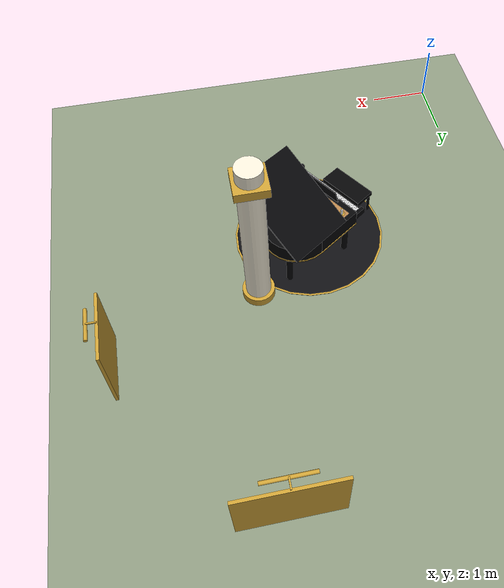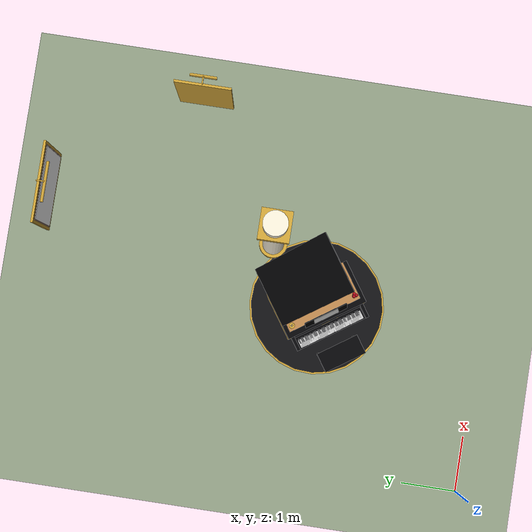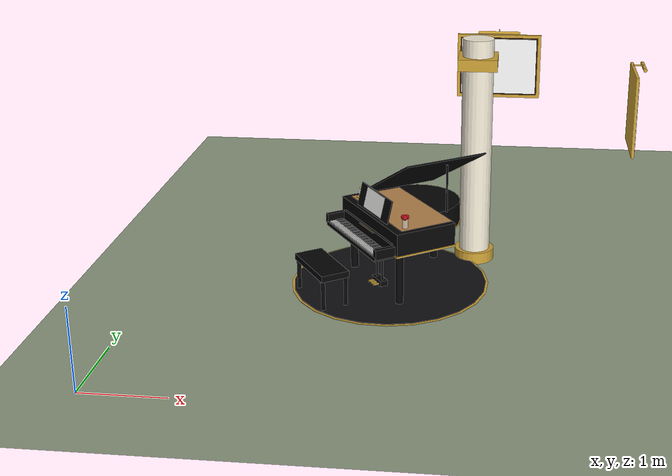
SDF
<sdf version="1.9">
 <world name="dar_tunibot">
  <model name="ground_plane">
   <static>true</static>
   <link name="link">
    <collision name="collision">
     <geometry><plane><normal>0 0 1</normal><size>60 60</size></plane></geometry>
    </collision>
    <visual name="visual">
     <geometry><plane><normal>0 0 1</normal><size>60 60</size></plane></geometry>
     <material><ambient>0.55 0.6 0.5 1</ambient><diffuse>0.55 0.6 0.5 1</diffuse></material>
    </visual>
   </link>
  </model>
  <model name="column_5">
   <static>true</static>
   <pose>4 4 0 0 0 0</pose>
   <link name="link">
    <visual name="base_v">
     <pose>0.000 0.000 0.075 0.0000 0.0000 0.0000</pose>
     <geometry><cylinder><radius>0.260</radius><length>0.150</length></cylinder></geometry>
     <material>
      <ambient>0.8 0.63 0.21 1</ambient>
      <diffuse>0.8 0.63 0.21 1</diffuse>
      <specular>0.1 0.1 0.1 1</specular>
     </material>
    </visual>
    <collision name="base_c">
     <pose>0.000 0.000 0.075 0.0000 0.0000 0.0000</pose>
     <geometry><cylinder><radius>0.260</radius><length>0.150</length></cylinder></geometry>
    </collision>
    <visual name="shaft_v">
     <pose>0.000 0.000 1.500 0.0000 0.0000 0.0000</pose>
     <geometry><cylinder><radius>0.200</radius><length>3.000</length></cylinder></geometry>
     <material>
      <ambient>0.95 0.92 0.84 1</ambient>
      <diffuse>0.95 0.92 0.84 1</diffuse>
      <specular>0.1 0.1 0.1 1</specular>
     </material>
    </visual>
    <collision name="shaft_c">
     <pose>0.000 0.000 1.500 0.0000 0.0000 0.0000</pose>
     <geometry><cylinder><radius>0.200</radius><length>3.000</length></cylinder></geometry>
    </collision>
    <visual name="capital_v">
     <pose>0.000 0.000 2.700 0.0000 0.0000 0.0000</pose>
     <geometry><box><size>0.500 0.500 0.150</size></box></geometry>
     <material>
      <ambient>0.8 0.63 0.21 1</ambient>
      <diffuse>0.8 0.63 0.21 1</diffuse>
      <specular>0.1 0.1 0.1 1</specular>
     </material>
    </visual>
   </link>
  </model>
  <model name="art_north_east">
   <static>true</static>
   <pose>4.2 7.9 0 0 0 -1.5707963267948966</pose>
   <link name="link">
    <visual name="frame_v">
     <pose>0.030 0.000 1.700 0.0000 0.0000 0.0000</pose>
     <geometry><box><size>0.040 1.340 1.040</size></box></geometry>
     <material>
      <ambient>0.8 0.63 0.21 1</ambient>
      <diffuse>0.8 0.63 0.21 1</diffuse>
      <specular>0.1 0.1 0.1 1</specular>
     </material>
    </visual>
    <visual name="liner_v">
     <pose>0.052 0.000 1.700 0.0000 0.0000 0.0000</pose>
     <geometry><box><size>0.010 1.240 0.940</size></box></geometry>
     <material>
      <ambient>0.2 0.12 0.07 1</ambient>
      <diffuse>0.2 0.12 0.07 1</diffuse>
      <specular>0.1 0.1 0.1 1</specular>
     </material>
    </visual>
    <visual name="canvas_v">
     <pose>0.057 0.000 1.700 0.0000 0.0000 0.0000</pose>
     <geometry><box><size>0.010 1.200 0.900</size></box></geometry>
     <material>
      <ambient>1 1 1 1</ambient>
      <diffuse>1 1 1 1</diffuse>
      <specular>0.05 0.05 0.05 1</specular>
      <pbr>
       <metal>
        <albedo_map>model://dar_art/materials/textures/desert_dunes_night.png</albedo_map>
        <roughness>0.9</roughness>
        <metalness>0.0</metalness>
       </metal>
      </pbr>
     </material>
    </visual>
    <visual name="lamp_arm_v">
     <pose>0.080 0.000 2.290 0.0000 0.0000 0.0000</pose>
     <geometry><box><size>0.140 0.020 0.020</size></box></geometry>
     <material>
      <ambient>0.8 0.63 0.21 1</ambient>
      <diffuse>0.8 0.63 0.21 1</diffuse>
      <specular>0.1 0.1 0.1 1</specular>
     </material>
    </visual>
    <visual name="lamp_v">
     <pose>0.150 0.000 2.270 1.5708 0.0000 0.0000</pose>
     <geometry><cylinder><radius>0.025</radius><length>0.660</length></cylinder></geometry>
     <material>
      <ambient>0.8 0.63 0.21 1</ambient>
      <diffuse>0.8 0.63 0.21 1</diffuse>
      <specular>0.1 0.1 0.1 1</specular>
     </material>
    </visual>
    <visual name="lamp_glow_v">
     <pose>0.150 0.000 2.245 0.0000 0.0000 0.0000</pose>
     <geometry><box><size>0.020 0.600 0.010</size></box></geometry>
     <material>
      <ambient>1.0 0.85 0.6 1</ambient>
      <diffuse>1.0 0.85 0.6 1</diffuse>
      <specular>0.1 0.1 0.1 1</specular>
      <emissive>1.0 0.8 0.5 1</emissive>
     </material>
    </visual>
   </link>
  </model>
  <model name="art_salon_west">
   <static>true</static>
   <pose>6.1 5.5 0 0 0 0.0</pose>
   <link name="link">
    <visual name="frame_v">
     <pose>0.030 0.000 1.700 0.0000 0.0000 0.0000</pose>
     <geometry><box><size>0.040 0.940 1.140</size></box></geometry>
     <material>
      <ambient>0.8 0.63 0.21 1</ambient>
      <diffuse>0.8 0.63 0.21 1</diffuse>
      <specular>0.1 0.1 0.1 1</specular>
     </material>
    </visual>
    <visual name="liner_v">
     <pose>0.052 0.000 1.700 0.0000 0.0000 0.0000</pose>
     <geometry><box><size>0.010 0.840 1.040</size></box></geometry>
     <material>
      <ambient>0.2 0.12 0.07 1</ambient>
      <diffuse>0.2 0.12 0.07 1</diffuse>
      <specular>0.1 0.1 0.1 1</specular>
     </material>
    </visual>
    <visual name="canvas_v">
     <pose>0.057 0.000 1.700 0.0000 0.0000 0.0000</pose>
     <geometry><box><size>0.010 0.800 1.000</size></box></geometry>
     <material>
      <ambient>1 1 1 1</ambient>
      <diffuse>1 1 1 1</diffuse>
      <specular>0.05 0.05 0.05 1</specular>
      <pbr>
       <metal>
        <albedo_map>model://dar_art/materials/textures/gold_burgundy_rings.png</albedo_map>
        <roughness>0.9</roughness>
        <metalness>0.0</metalness>
       </metal>
      </pbr>
     </material>
    </visual>
    <visual name="lamp_arm_v">
     <pose>0.080 0.000 2.340 0.0000 0.0000 0.0000</pose>
     <geometry><box><size>0.140 0.020 0.020</size></box></geometry>
     <material>
      <ambient>0.8 0.63 0.21 1</ambient>
      <diffuse>0.8 0.63 0.21 1</diffuse>
      <specular>0.1 0.1 0.1 1</specular>
     </material>
    </visual>
    <visual name="lamp_v">
     <pose>0.150 0.000 2.320 1.5708 0.0000 0.0000</pose>
     <geometry><cylinder><radius>0.025</radius><length>0.440</length></cylinder></geometry>
     <material>
      <ambient>0.8 0.63 0.21 1</ambient>
      <diffuse>0.8 0.63 0.21 1</diffuse>
      <specular>0.1 0.1 0.1 1</specular>
     </material>
    </visual>
    <visual name="lamp_glow_v">
     <pose>0.150 0.000 2.295 0.0000 0.0000 0.0000</pose>
     <geometry><box><size>0.020 0.400 0.010</size></box></geometry>
     <material>
      <ambient>1.0 0.85 0.6 1</ambient>
      <diffuse>1.0 0.85 0.6 1</diffuse>
      <specular>0.1 0.1 0.1 1</specular>
      <emissive>1.0 0.8 0.5 1</emissive>
     </material>
    </visual>
   </link>
  </model>
  <model name="grand_piano">
   <static>true</static>
   <pose>3.18 3.17 0 0 0 0.6</pose>
   <link name="link">
    <collision name="solid_c">
     <pose>0.000 0.000 0.500 0.0000 0.0000 0.0000</pose>
     <geometry><box><size>1.600 1.500 1.000</size></box></geometry>
    </collision>
    <collision name="bench_solid_c">
     <pose>-1.200 0.000 0.250 0.0000 0.0000 0.0000</pose>
     <geometry><box><size>0.360 0.800 0.500</size></box></geometry>
    </collision>
    <visual name="platform_edge_v">
     <pose>-0.250 0.000 0.034 0.0000 0.0000 0.0000</pose>
     <geometry><cylinder><radius>1.250</radius><length>0.006</length></cylinder></geometry>
     <material>
      <ambient>0.8 0.63 0.21 1</ambient>
      <diffuse>0.8 0.63 0.21 1</diffuse>
      <specular>0.1 0.1 0.1 1</specular>
     </material>
    </visual>
    <visual name="platform_v">
     <pose>-0.250 0.000 0.040 0.0000 0.0000 0.0000</pose>
     <geometry><cylinder><radius>1.220</radius><length>0.010</length></cylinder></geometry>
     <material>
      <ambient>0.06 0.06 0.07 1</ambient>
      <diffuse>0.06 0.06 0.07 1</diffuse>
      <specular>0.1 0.1 0.1 1</specular>
     </material>
    </visual>
    <visual name="case_v">
     <pose>-0.150 0.000 0.850 0.0000 0.0000 0.0000</pose>
     <geometry><box><size>0.800 1.500 0.300</size></box></geometry>
     <material>
      <ambient>0.015 0.015 0.02 1</ambient>
      <diffuse>0.015 0.015 0.02 1</diffuse>
      <specular>0.7 0.7 0.7 1</specular>
     </material>
    </visual>
    <visual name="tail_v">
     <pose>0.250 0.200 0.850 0.0000 0.0000 0.0000</pose>
     <geometry><cylinder><radius>0.550</radius><length>0.300</length></cylinder></geometry>
     <material>
      <ambient>0.015 0.015 0.02 1</ambient>
      <diffuse>0.015 0.015 0.02 1</diffuse>
      <specular>0.7 0.7 0.7 1</specular>
     </material>
    </visual>
    <visual name="rim_trim_v">
     <pose>-0.150 0.000 0.710 0.0000 0.0000 0.0000</pose>
     <geometry><box><size>0.820 1.520 0.020</size></box></geometry>
     <material>
      <ambient>0.8 0.63 0.21 1</ambient>
      <diffuse>0.8 0.63 0.21 1</diffuse>
      <specular>0.1 0.1 0.1 1</specular>
     </material>
    </visual>
    <visual name="tail_trim_v">
     <pose>0.250 0.200 0.710 0.0000 0.0000 0.0000</pose>
     <geometry><cylinder><radius>0.560</radius><length>0.020</length></cylinder></geometry>
     <material>
      <ambient>0.8 0.63 0.21 1</ambient>
      <diffuse>0.8 0.63 0.21 1</diffuse>
      <specular>0.1 0.1 0.1 1</specular>
     </material>
    </visual>
    <visual name="soundboard_v">
     <pose>-0.100 0.000 1.003 0.0000 0.0000 0.0000</pose>
     <geometry><box><size>0.700 1.360 0.005</size></box></geometry>
     <material>
      <ambient>0.72 0.52 0.3 1</ambient>
      <diffuse>0.72 0.52 0.3 1</diffuse>
      <specular>0.1 0.1 0.1 1</specular>
     </material>
    </visual>
    <visual name="lid_v">
     <pose>0.250 0.100 1.375 -0.5236 0.0000 0.0000</pose>
     <geometry><box><size>1.100 1.500 0.020</size></box></geometry>
     <material>
      <ambient>0.015 0.015 0.02 1</ambient>
      <diffuse>0.015 0.015 0.02 1</diffuse>
      <specular>0.7 0.7 0.7 1</specular>
     </material>
    </visual>
    <visual name="prop_v">
     <pose>0.350 -0.376 1.310 0.0000 0.0000 0.0000</pose>
     <geometry><cylinder><radius>0.012</radius><length>0.620</length></cylinder></geometry>
     <material>
      <ambient>0.015 0.015 0.02 1</ambient>
      <diffuse>0.015 0.015 0.02 1</diffuse>
      <specular>0.7 0.7 0.7 1</specular>
     </material>
    </visual>
    <visual name="keybed_v">
     <pose>-0.680 0.000 0.705 0.0000 0.0000 0.0000</pose>
     <geometry><box><size>0.260 1.340 0.050</size></box></geometry>
     <material>
      <ambient>0.015 0.015 0.02 1</ambient>
      <diffuse>0.015 0.015 0.02 1</diffuse>
      <specular>0.7 0.7 0.7 1</specular>
     </material>
    </visual>
    <visual name="cheek_l_v">
     <pose>-0.680 0.670 0.770 0.0000 0.0000 0.0000</pose>
     <geometry><box><size>0.260 0.060 0.120</size></box></geometry>
     <material>
      <ambient>0.015 0.015 0.02 1</ambient>
      <diffuse>0.015 0.015 0.02 1</diffuse>
      <specular>0.7 0.7 0.7 1</specular>
     </material>
    </visual>
    <visual name="cheek_r_v">
     <pose>-0.680 -0.670 0.770 0.0000 0.0000 0.0000</pose>
     <geometry><box><size>0.260 0.060 0.120</size></box></geometry>
     <material>
      <ambient>0.015 0.015 0.02 1</ambient>
      <diffuse>0.015 0.015 0.02 1</diffuse>
      <specular>0.7 0.7 0.7 1</specular>
     </material>
    </visual>
    <visual name="fallboard_v">
     <pose>-0.560 0.000 0.790 0.0000 0.0000 0.0000</pose>
     <geometry><box><size>0.040 1.280 0.120</size></box></geometry>
     <material>
      <ambient>0.015 0.015 0.02 1</ambient>
      <diffuse>0.015 0.015 0.02 1</diffuse>
      <specular>0.7 0.7 0.7 1</specular>
     </material>
    </visual>
    <visual name="nameboard_trim_v">
     <pose>-0.560 0.000 0.830 0.0000 0.0000 0.0000</pose>
     <geometry><box><size>0.045 0.400 0.010</size></box></geometry>
     <material>
      <ambient>0.8 0.63 0.21 1</ambient>
      <diffuse>0.8 0.63 0.21 1</diffuse>
      <specular>0.1 0.1 0.1 1</specular>
     </material>
    </visual>
    <visual name="wkey0_v">
     <pose>-0.720 0.598 0.740 0.0000 0.0000 0.0000</pose>
     <geometry><box><size>0.150 0.021 0.020</size></box></geometry>
     <material>
      <ambient>0.98 0.98 0.97 1</ambient>
      <diffuse>0.98 0.98 0.97 1</diffuse>
      <specular>0.1 0.1 0.1 1</specular>
     </material>
    </visual>
    <visual name="bkey0_v">
     <pose>-0.670 0.587 0.755 0.0000 0.0000 0.0000</pose>
     <geometry><box><size>0.090 0.013 0.020</size></box></geometry>
     <material>
      <ambient>0.015 0.015 0.02 1</ambient>
      <diffuse>0.015 0.015 0.02 1</diffuse>
      <specular>0.7 0.7 0.7 1</specular>
     </material>
    </visual>
    <visual name="wkey1_v">
     <pose>-0.720 0.575 0.740 0.0000 0.0000 0.0000</pose>
     <geometry><box><size>0.150 0.021 0.020</size></box></geometry>
     <material>
      <ambient>0.98 0.98 0.97 1</ambient>
      <diffuse>0.98 0.98 0.97 1</diffuse>
      <specular>0.1 0.1 0.1 1</specular>
     </material>
    </visual>
    <visual name="wkey2_v">
     <pose>-0.720 0.551 0.740 0.0000 0.0000 0.0000</pose>
     <geometry><box><size>0.150 0.021 0.020</size></box></geometry>
     <material>
      <ambient>0.98 0.98 0.97 1</ambient>
      <diffuse>0.98 0.98 0.97 1</diffuse>
      <specular>0.1 0.1 0.1 1</specular>
     </material>
    </visual>
    <visual name="bkey2_v">
     <pose>-0.670 0.540 0.755 0.0000 0.0000 0.0000</pose>
     <geometry><box><size>0.090 0.013 0.020</size></box></geometry>
     <material>
      <ambient>0.015 0.015 0.02 1</ambient>
      <diffuse>0.015 0.015 0.02 1</diffuse>
      <specular>0.7 0.7 0.7 1</specular>
     </material>
    </visual>
    <visual name="wkey3_v">
     <pose>-0.720 0.528 0.740 0.0000 0.0000 0.0000</pose>
     <geometry><box><size>0.150 0.021 0.020</size></box></geometry>
     <material>
      <ambient>0.98 0.98 0.97 1</ambient>
      <diffuse>0.98 0.98 0.97 1</diffuse>
      <specular>0.1 0.1 0.1 1</specular>
     </material>
    </visual>
    <visual name="bkey3_v">
     <pose>-0.670 0.516 0.755 0.0000 0.0000 0.0000</pose>
     <geometry><box><size>0.090 0.013 0.020</size></box></geometry>
     <material>
      <ambient>0.015 0.015 0.02 1</ambient>
      <diffuse>0.015 0.015 0.02 1</diffuse>
      <specular>0.7 0.7 0.7 1</specular>
     </material>
    </visual>
    <visual name="wkey4_v">
     <pose>-0.720 0.504 0.740 0.0000 0.0000 0.0000</pose>
     <geometry><box><size>0.150 0.021 0.020</size></box></geometry>
     <material>
      <ambient>0.98 0.98 0.97 1</ambient>
      <diffuse>0.98 0.98 0.97 1</diffuse>
      <specular>0.1 0.1 0.1 1</specular>
     </material>
    </visual>
    <visual name="wkey5_v">
     <pose>-0.720 0.481 0.740 0.0000 0.0000 0.0000</pose>
     <geometry><box><size>0.150 0.021 0.020</size></box></geometry>
     <material>
      <ambient>0.98 0.98 0.97 1</ambient>
      <diffuse>0.98 0.98 0.97 1</diffuse>
      <specular>0.1 0.1 0.1 1</specular>
     </material>
    </visual>
    <visual name="bkey5_v">
     <pose>-0.670 0.469 0.755 0.0000 0.0000 0.0000</pose>
     <geometry><box><size>0.090 0.013 0.020</size></box></geometry>
     <material>
      <ambient>0.015 0.015 0.02 1</ambient>
      <diffuse>0.015 0.015 0.02 1</diffuse>
      <specular>0.7 0.7 0.7 1</specular>
     </material>
    </visual>
    <visual name="wkey6_v">
     <pose>-0.720 0.458 0.740 0.0000 0.0000 0.0000</pose>
     <geometry><box><size>0.150 0.021 0.020</size></box></geometry>
     <material>
      <ambient>0.98 0.98 0.97 1</ambient>
      <diffuse>0.98 0.98 0.97 1</diffuse>
      <specular>0.1 0.1 0.1 1</specular>
     </material>
    </visual>
    <visual name="bkey6_v">
     <pose>-0.670 0.446 0.755 0.0000 0.0000 0.0000</pose>
     <geometry><box><size>0.090 0.013 0.020</size></box></geometry>
     <material>
      <ambient>0.015 0.015 0.02 1</ambient>
      <diffuse>0.015 0.015 0.02 1</diffuse>
      <specular>0.7 0.7 0.7 1</specular>
     </material>
    </visual>
    <visual name="wkey7_v">
     <pose>-0.720 0.434 0.740 0.0000 0.0000 0.0000</pose>
     <geometry><box><size>0.150 0.021 0.020</size></box></geometry>
     <material>
      <ambient>0.98 0.98 0.97 1</ambient>
      <diffuse>0.98 0.98 0.97 1</diffuse>
      <specular>0.1 0.1 0.1 1</specular>
     </material>
    </visual>
    <visual name="bkey7_v">
     <pose>-0.670 0.422 0.755 0.0000 0.0000 0.0000</pose>
     <geometry><box><size>0.090 0.013 0.020</size></box></geometry>
     <material>
      <ambient>0.015 0.015 0.02 1</ambient>
      <diffuse>0.015 0.015 0.02 1</diffuse>
      <specular>0.7 0.7 0.7 1</specular>
     </material>
    </visual>
    <visual name="wkey8_v">
     <pose>-0.720 0.411 0.740 0.0000 0.0000 0.0000</pose>
     <geometry><box><size>0.150 0.021 0.020</size></box></geometry>
     <material>
      <ambient>0.98 0.98 0.97 1</ambient>
      <diffuse>0.98 0.98 0.97 1</diffuse>
      <specular>0.1 0.1 0.1 1</specular>
     </material>
    </visual>
    <visual name="wkey9_v">
     <pose>-0.720 0.387 0.740 0.0000 0.0000 0.0000</pose>
     <geometry><box><size>0.150 0.021 0.020</size></box></geometry>
     <material>
      <ambient>0.98 0.98 0.97 1</ambient>
      <diffuse>0.98 0.98 0.97 1</diffuse>
      <specular>0.1 0.1 0.1 1</specular>
     </material>
    </visual>
    <visual name="bkey9_v">
     <pose>-0.670 0.375 0.755 0.0000 0.0000 0.0000</pose>
     <geometry><box><size>0.090 0.013 0.020</size></box></geometry>
     <material>
      <ambient>0.015 0.015 0.02 1</ambient>
      <diffuse>0.015 0.015 0.02 1</diffuse>
      <specular>0.7 0.7 0.7 1</specular>
     </material>
    </visual>
    <visual name="wkey10_v">
     <pose>-0.720 0.364 0.740 0.0000 0.0000 0.0000</pose>
     <geometry><box><size>0.150 0.021 0.020</size></box></geometry>
     <material>
      <ambient>0.98 0.98 0.97 1</ambient>
      <diffuse>0.98 0.98 0.97 1</diffuse>
      <specular>0.1 0.1 0.1 1</specular>
     </material>
    </visual>
    <visual name="bkey10_v">
     <pose>-0.670 0.352 0.755 0.0000 0.0000 0.0000</pose>
     <geometry><box><size>0.090 0.013 0.020</size></box></geometry>
     <material>
      <ambient>0.015 0.015 0.02 1</ambient>
      <diffuse>0.015 0.015 0.02 1</diffuse>
      <specular>0.7 0.7 0.7 1</specular>
     </material>
    </visual>
    <visual name="wkey11_v">
     <pose>-0.720 0.340 0.740 0.0000 0.0000 0.0000</pose>
     <geometry><box><size>0.150 0.021 0.020</size></box></geometry>
     <material>
      <ambient>0.98 0.98 0.97 1</ambient>
      <diffuse>0.98 0.98 0.97 1</diffuse>
      <specular>0.1 0.1 0.1 1</specular>
     </material>
    </visual>
    <visual name="wkey12_v">
     <pose>-0.720 0.317 0.740 0.0000 0.0000 0.0000</pose>
     <geometry><box><size>0.150 0.021 0.020</size></box></geometry>
     <material>
      <ambient>0.98 0.98 0.97 1</ambient>
      <diffuse>0.98 0.98 0.97 1</diffuse>
      <specular>0.1 0.1 0.1 1</specular>
     </material>
    </visual>
    <visual name="bkey12_v">
     <pose>-0.670 0.305 0.755 0.0000 0.0000 0.0000</pose>
     <geometry><box><size>0.090 0.013 0.020</size></box></geometry>
     <material>
      <ambient>0.015 0.015 0.02 1</ambient>
      <diffuse>0.015 0.015 0.02 1</diffuse>
      <specular>0.7 0.7 0.7 1</specular>
     </material>
    </visual>
    <visual name="wkey13_v">
     <pose>-0.720 0.293 0.740 0.0000 0.0000 0.0000</pose>
     <geometry><box><size>0.150 0.021 0.020</size></box></geometry>
     <material>
      <ambient>0.98 0.98 0.97 1</ambient>
      <diffuse>0.98 0.98 0.97 1</diffuse>
      <specular>0.1 0.1 0.1 1</specular>
     </material>
    </visual>
    <visual name="bkey13_v">
     <pose>-0.670 0.282 0.755 0.0000 0.0000 0.0000</pose>
     <geometry><box><size>0.090 0.013 0.020</size></box></geometry>
     <material>
      <ambient>0.015 0.015 0.02 1</ambient>
      <diffuse>0.015 0.015 0.02 1</diffuse>
      <specular>0.7 0.7 0.7 1</specular>
     </material>
    </visual>
    <visual name="wkey14_v">
     <pose>-0.720 0.270 0.740 0.0000 0.0000 0.0000</pose>
     <geometry><box><size>0.150 0.021 0.020</size></box></geometry>
     <material>
      <ambient>0.98 0.98 0.97 1</ambient>
      <diffuse>0.98 0.98 0.97 1</diffuse>
      <specular>0.1 0.1 0.1 1</specular>
     </material>
    </visual>
    <visual name="bkey14_v">
     <pose>-0.670 0.258 0.755 0.0000 0.0000 0.0000</pose>
     <geometry><box><size>0.090 0.013 0.020</size></box></geometry>
     <material>
      <ambient>0.015 0.015 0.02 1</ambient>
      <diffuse>0.015 0.015 0.02 1</diffuse>
      <specular>0.7 0.7 0.7 1</specular>
     </material>
    </visual>
    <visual name="wkey15_v">
     <pose>-0.720 0.246 0.740 0.0000 0.0000 0.0000</pose>
     <geometry><box><size>0.150 0.021 0.020</size></box></geometry>
     <material>
      <ambient>0.98 0.98 0.97 1</ambient>
      <diffuse>0.98 0.98 0.97 1</diffuse>
      <specular>0.1 0.1 0.1 1</specular>
     </material>
    </visual>
    <visual name="wkey16_v">
     <pose>-0.720 0.223 0.740 0.0000 0.0000 0.0000</pose>
     <geometry><box><size>0.150 0.021 0.020</size></box></geometry>
     <material>
      <ambient>0.98 0.98 0.97 1</ambient>
      <diffuse>0.98 0.98 0.97 1</diffuse>
      <specular>0.1 0.1 0.1 1</specular>
     </material>
    </visual>
    <visual name="bkey16_v">
     <pose>-0.670 0.211 0.755 0.0000 0.0000 0.0000</pose>
     <geometry><box><size>0.090 0.013 0.020</size></box></geometry>
     <material>
      <ambient>0.015 0.015 0.02 1</ambient>
      <diffuse>0.015 0.015 0.02 1</diffuse>
      <specular>0.7 0.7 0.7 1</specular>
     </material>
    </visual>
    <visual name="wkey17_v">
     <pose>-0.720 0.199 0.740 0.0000 0.0000 0.0000</pose>
     <geometry><box><size>0.150 0.021 0.020</size></box></geometry>
     <material>
      <ambient>0.98 0.98 0.97 1</ambient>
      <diffuse>0.98 0.98 0.97 1</diffuse>
      <specular>0.1 0.1 0.1 1</specular>
     </material>
    </visual>
    <visual name="bkey17_v">
     <pose>-0.670 0.188 0.755 0.0000 0.0000 0.0000</pose>
     <geometry><box><size>0.090 0.013 0.020</size></box></geometry>
     <material>
      <ambient>0.015 0.015 0.02 1</ambient>
      <diffuse>0.015 0.015 0.02 1</diffuse>
      <specular>0.7 0.7 0.7 1</specular>
     </material>
    </visual>
    <visual name="wkey18_v">
     <pose>-0.720 0.176 0.740 0.0000 0.0000 0.0000</pose>
     <geometry><box><size>0.150 0.021 0.020</size></box></geometry>
     <material>
      <ambient>0.98 0.98 0.97 1</ambient>
      <diffuse>0.98 0.98 0.97 1</diffuse>
      <specular>0.1 0.1 0.1 1</specular>
     </material>
    </visual>
    <visual name="wkey19_v">
     <pose>-0.720 0.153 0.740 0.0000 0.0000 0.0000</pose>
     <geometry><box><size>0.150 0.021 0.020</size></box></geometry>
     <material>
      <ambient>0.98 0.98 0.97 1</ambient>
      <diffuse>0.98 0.98 0.97 1</diffuse>
      <specular>0.1 0.1 0.1 1</specular>
     </material>
    </visual>
    <visual name="bkey19_v">
     <pose>-0.670 0.141 0.755 0.0000 0.0000 0.0000</pose>
     <geometry><box><size>0.090 0.013 0.020</size></box></geometry>
     <material>
      <ambient>0.015 0.015 0.02 1</ambient>
      <diffuse>0.015 0.015 0.02 1</diffuse>
      <specular>0.7 0.7 0.7 1</specular>
     </material>
    </visual>
    <visual name="wkey20_v">
     <pose>-0.720 0.129 0.740 0.0000 0.0000 0.0000</pose>
     <geometry><box><size>0.150 0.021 0.020</size></box></geometry>
     <material>
      <ambient>0.98 0.98 0.97 1</ambient>
      <diffuse>0.98 0.98 0.97 1</diffuse>
      <specular>0.1 0.1 0.1 1</specular>
     </material>
    </visual>
    <visual name="bkey20_v">
     <pose>-0.670 0.117 0.755 0.0000 0.0000 0.0000</pose>
     <geometry><box><size>0.090 0.013 0.020</size></box></geometry>
     <material>
      <ambient>0.015 0.015 0.02 1</ambient>
      <diffuse>0.015 0.015 0.02 1</diffuse>
      <specular>0.7 0.7 0.7 1</specular>
     </material>
    </visual>
    <visual name="wkey21_v">
     <pose>-0.720 0.106 0.740 0.0000 0.0000 0.0000</pose>
     <geometry><box><size>0.150 0.021 0.020</size></box></geometry>
     <material>
      <ambient>0.98 0.98 0.97 1</ambient>
      <diffuse>0.98 0.98 0.97 1</diffuse>
      <specular>0.1 0.1 0.1 1</specular>
     </material>
    </visual>
    <visual name="bkey21_v">
     <pose>-0.670 0.094 0.755 0.0000 0.0000 0.0000</pose>
     <geometry><box><size>0.090 0.013 0.020</size></box></geometry>
     <material>
      <ambient>0.015 0.015 0.02 1</ambient>
      <diffuse>0.015 0.015 0.02 1</diffuse>
      <specular>0.7 0.7 0.7 1</specular>
     </material>
    </visual>
    <visual name="wkey22_v">
     <pose>-0.720 0.082 0.740 0.0000 0.0000 0.0000</pose>
     <geometry><box><size>0.150 0.021 0.020</size></box></geometry>
     <material>
      <ambient>0.98 0.98 0.97 1</ambient>
      <diffuse>0.98 0.98 0.97 1</diffuse>
      <specular>0.1 0.1 0.1 1</specular>
     </material>
    </visual>
    <visual name="wkey23_v">
     <pose>-0.720 0.059 0.740 0.0000 0.0000 0.0000</pose>
     <geometry><box><size>0.150 0.021 0.020</size></box></geometry>
     <material>
      <ambient>0.98 0.98 0.97 1</ambient>
      <diffuse>0.98 0.98 0.97 1</diffuse>
      <specular>0.1 0.1 0.1 1</specular>
     </material>
    </visual>
    <visual name="bkey23_v">
     <pose>-0.670 0.047 0.755 0.0000 0.0000 0.0000</pose>
     <geometry><box><size>0.090 0.013 0.020</size></box></geometry>
     <material>
      <ambient>0.015 0.015 0.02 1</ambient>
      <diffuse>0.015 0.015 0.02 1</diffuse>
      <specular>0.7 0.7 0.7 1</specular>
     </material>
    </visual>
    <visual name="wkey24_v">
     <pose>-0.720 0.035 0.740 0.0000 0.0000 0.0000</pose>
     <geometry><box><size>0.150 0.021 0.020</size></box></geometry>
     <material>
      <ambient>0.98 0.98 0.97 1</ambient>
      <diffuse>0.98 0.98 0.97 1</diffuse>
      <specular>0.1 0.1 0.1 1</specular>
     </material>
    </visual>
    <visual name="bkey24_v">
     <pose>-0.670 0.023 0.755 0.0000 0.0000 0.0000</pose>
     <geometry><box><size>0.090 0.013 0.020</size></box></geometry>
     <material>
      <ambient>0.015 0.015 0.02 1</ambient>
      <diffuse>0.015 0.015 0.02 1</diffuse>
      <specular>0.7 0.7 0.7 1</specular>
     </material>
    </visual>
    <visual name="wkey25_v">
     <pose>-0.720 0.012 0.740 0.0000 0.0000 0.0000</pose>
     <geometry><box><size>0.150 0.021 0.020</size></box></geometry>
     <material>
      <ambient>0.98 0.98 0.97 1</ambient>
      <diffuse>0.98 0.98 0.97 1</diffuse>
      <specular>0.1 0.1 0.1 1</specular>
     </material>
    </visual>
    <visual name="wkey26_v">
     <pose>-0.720 -0.012 0.740 0.0000 0.0000 0.0000</pose>
     <geometry><box><size>0.150 0.021 0.020</size></box></geometry>
     <material>
      <ambient>0.98 0.98 0.97 1</ambient>
      <diffuse>0.98 0.98 0.97 1</diffuse>
      <specular>0.1 0.1 0.1 1</specular>
     </material>
    </visual>
    <visual name="bkey26_v">
     <pose>-0.670 -0.023 0.755 0.0000 0.0000 0.0000</pose>
     <geometry><box><size>0.090 0.013 0.020</size></box></geometry>
     <material>
      <ambient>0.015 0.015 0.02 1</ambient>
      <diffuse>0.015 0.015 0.02 1</diffuse>
      <specular>0.7 0.7 0.7 1</specular>
     </material>
    </visual>
    <visual name="wkey27_v">
     <pose>-0.720 -0.035 0.740 0.0000 0.0000 0.0000</pose>
     <geometry><box><size>0.150 0.021 0.020</size></box></geometry>
     <material>
      <ambient>0.98 0.98 0.97 1</ambient>
      <diffuse>0.98 0.98 0.97 1</diffuse>
      <specular>0.1 0.1 0.1 1</specular>
     </material>
    </visual>
    <visual name="bkey27_v">
     <pose>-0.670 -0.047 0.755 0.0000 0.0000 0.0000</pose>
     <geometry><box><size>0.090 0.013 0.020</size></box></geometry>
     <material>
      <ambient>0.015 0.015 0.02 1</ambient>
      <diffuse>0.015 0.015 0.02 1</diffuse>
      <specular>0.7 0.7 0.7 1</specular>
     </material>
    </visual>
    <visual name="wkey28_v">
     <pose>-0.720 -0.059 0.740 0.0000 0.0000 0.0000</pose>
     <geometry><box><size>0.150 0.021 0.020</size></box></geometry>
     <material>
      <ambient>0.98 0.98 0.97 1</ambient>
      <diffuse>0.98 0.98 0.97 1</diffuse>
      <specular>0.1 0.1 0.1 1</specular>
     </material>
    </visual>
    <visual name="bkey28_v">
     <pose>-0.670 -0.070 0.755 0.0000 0.0000 0.0000</pose>
     <geometry><box><size>0.090 0.013 0.020</size></box></geometry>
     <material>
      <ambient>0.015 0.015 0.02 1</ambient>
      <diffuse>0.015 0.015 0.02 1</diffuse>
      <specular>0.7 0.7 0.7 1</specular>
     </material>
    </visual>
    <visual name="wkey29_v">
     <pose>-0.720 -0.082 0.740 0.0000 0.0000 0.0000</pose>
     <geometry><box><size>0.150 0.021 0.020</size></box></geometry>
     <material>
      <ambient>0.98 0.98 0.97 1</ambient>
      <diffuse>0.98 0.98 0.97 1</diffuse>
      <specular>0.1 0.1 0.1 1</specular>
     </material>
    </visual>
    <visual name="wkey30_v">
     <pose>-0.720 -0.106 0.740 0.0000 0.0000 0.0000</pose>
     <geometry><box><size>0.150 0.021 0.020</size></box></geometry>
     <material>
      <ambient>0.98 0.98 0.97 1</ambient>
      <diffuse>0.98 0.98 0.97 1</diffuse>
      <specular>0.1 0.1 0.1 1</specular>
     </material>
    </visual>
    <visual name="bkey30_v">
     <pose>-0.670 -0.117 0.755 0.0000 0.0000 0.0000</pose>
     <geometry><box><size>0.090 0.013 0.020</size></box></geometry>
     <material>
      <ambient>0.015 0.015 0.02 1</ambient>
      <diffuse>0.015 0.015 0.02 1</diffuse>
      <specular>0.7 0.7 0.7 1</specular>
     </material>
    </visual>
    <visual name="wkey31_v">
     <pose>-0.720 -0.129 0.740 0.0000 0.0000 0.0000</pose>
     <geometry><box><size>0.150 0.021 0.020</size></box></geometry>
     <material>
      <ambient>0.98 0.98 0.97 1</ambient>
      <diffuse>0.98 0.98 0.97 1</diffuse>
      <specular>0.1 0.1 0.1 1</specular>
     </material>
    </visual>
    <visual name="bkey31_v">
     <pose>-0.670 -0.141 0.755 0.0000 0.0000 0.0000</pose>
     <geometry><box><size>0.090 0.013 0.020</size></box></geometry>
     <material>
      <ambient>0.015 0.015 0.02 1</ambient>
      <diffuse>0.015 0.015 0.02 1</diffuse>
      <specular>0.7 0.7 0.7 1</specular>
     </material>
    </visual>
    <visual name="wkey32_v">
     <pose>-0.720 -0.152 0.740 0.0000 0.0000 0.0000</pose>
     <geometry><box><size>0.150 0.021 0.020</size></box></geometry>
     <material>
      <ambient>0.98 0.98 0.97 1</ambient>
      <diffuse>0.98 0.98 0.97 1</diffuse>
      <specular>0.1 0.1 0.1 1</specular>
     </material>
    </visual>
    <visual name="wkey33_v">
     <pose>-0.720 -0.176 0.740 0.0000 0.0000 0.0000</pose>
     <geometry><box><size>0.150 0.021 0.020</size></box></geometry>
     <material>
      <ambient>0.98 0.98 0.97 1</ambient>
      <diffuse>0.98 0.98 0.97 1</diffuse>
      <specular>0.1 0.1 0.1 1</specular>
     </material>
    </visual>
    <visual name="bkey33_v">
     <pose>-0.670 -0.188 0.755 0.0000 0.0000 0.0000</pose>
     <geometry><box><size>0.090 0.013 0.020</size></box></geometry>
     <material>
      <ambient>0.015 0.015 0.02 1</ambient>
      <diffuse>0.015 0.015 0.02 1</diffuse>
      <specular>0.7 0.7 0.7 1</specular>
     </material>
    </visual>
    <visual name="wkey34_v">
     <pose>-0.720 -0.199 0.740 0.0000 0.0000 0.0000</pose>
     <geometry><box><size>0.150 0.021 0.020</size></box></geometry>
     <material>
      <ambient>0.98 0.98 0.97 1</ambient>
      <diffuse>0.98 0.98 0.97 1</diffuse>
      <specular>0.1 0.1 0.1 1</specular>
     </material>
    </visual>
    <visual name="bkey34_v">
     <pose>-0.670 -0.211 0.755 0.0000 0.0000 0.0000</pose>
     <geometry><box><size>0.090 0.013 0.020</size></box></geometry>
     <material>
      <ambient>0.015 0.015 0.02 1</ambient>
      <diffuse>0.015 0.015 0.02 1</diffuse>
      <specular>0.7 0.7 0.7 1</specular>
     </material>
    </visual>
    <visual name="wkey35_v">
     <pose>-0.720 -0.223 0.740 0.0000 0.0000 0.0000</pose>
     <geometry><box><size>0.150 0.021 0.020</size></box></geometry>
     <material>
      <ambient>0.98 0.98 0.97 1</ambient>
      <diffuse>0.98 0.98 0.97 1</diffuse>
      <specular>0.1 0.1 0.1 1</specular>
     </material>
    </visual>
    <visual name="bkey35_v">
     <pose>-0.670 -0.235 0.755 0.0000 0.0000 0.0000</pose>
     <geometry><box><size>0.090 0.013 0.020</size></box></geometry>
     <material>
      <ambient>0.015 0.015 0.02 1</ambient>
      <diffuse>0.015 0.015 0.02 1</diffuse>
      <specular>0.7 0.7 0.7 1</specular>
     </material>
    </visual>
    <visual name="wkey36_v">
     <pose>-0.720 -0.246 0.740 0.0000 0.0000 0.0000</pose>
     <geometry><box><size>0.150 0.021 0.020</size></box></geometry>
     <material>
      <ambient>0.98 0.98 0.97 1</ambient>
      <diffuse>0.98 0.98 0.97 1</diffuse>
      <specular>0.1 0.1 0.1 1</specular>
     </material>
    </visual>
    <visual name="wkey37_v">
     <pose>-0.720 -0.270 0.740 0.0000 0.0000 0.0000</pose>
     <geometry><box><size>0.150 0.021 0.020</size></box></geometry>
     <material>
      <ambient>0.98 0.98 0.97 1</ambient>
      <diffuse>0.98 0.98 0.97 1</diffuse>
      <specular>0.1 0.1 0.1 1</specular>
     </material>
    </visual>
    <visual name="bkey37_v">
     <pose>-0.670 -0.282 0.755 0.0000 0.0000 0.0000</pose>
     <geometry><box><size>0.090 0.013 0.020</size></box></geometry>
     <material>
      <ambient>0.015 0.015 0.02 1</ambient>
      <diffuse>0.015 0.015 0.02 1</diffuse>
      <specular>0.7 0.7 0.7 1</specular>
     </material>
    </visual>
    <visual name="wkey38_v">
     <pose>-0.720 -0.293 0.740 0.0000 0.0000 0.0000</pose>
     <geometry><box><size>0.150 0.021 0.020</size></box></geometry>
     <material>
      <ambient>0.98 0.98 0.97 1</ambient>
      <diffuse>0.98 0.98 0.97 1</diffuse>
      <specular>0.1 0.1 0.1 1</specular>
     </material>
    </visual>
    <visual name="bkey38_v">
     <pose>-0.670 -0.305 0.755 0.0000 0.0000 0.0000</pose>
     <geometry><box><size>0.090 0.013 0.020</size></box></geometry>
     <material>
      <ambient>0.015 0.015 0.02 1</ambient>
      <diffuse>0.015 0.015 0.02 1</diffuse>
      <specular>0.7 0.7 0.7 1</specular>
     </material>
    </visual>
    <visual name="wkey39_v">
     <pose>-0.720 -0.317 0.740 0.0000 0.0000 0.0000</pose>
     <geometry><box><size>0.150 0.021 0.020</size></box></geometry>
     <material>
      <ambient>0.98 0.98 0.97 1</ambient>
      <diffuse>0.98 0.98 0.97 1</diffuse>
      <specular>0.1 0.1 0.1 1</specular>
     </material>
    </visual>
    <visual name="wkey40_v">
     <pose>-0.720 -0.340 0.740 0.0000 0.0000 0.0000</pose>
     <geometry><box><size>0.150 0.021 0.020</size></box></geometry>
     <material>
      <ambient>0.98 0.98 0.97 1</ambient>
      <diffuse>0.98 0.98 0.97 1</diffuse>
      <specular>0.1 0.1 0.1 1</specular>
     </material>
    </visual>
    <visual name="bkey40_v">
     <pose>-0.670 -0.352 0.755 0.0000 0.0000 0.0000</pose>
     <geometry><box><size>0.090 0.013 0.020</size></box></geometry>
     <material>
      <ambient>0.015 0.015 0.02 1</ambient>
      <diffuse>0.015 0.015 0.02 1</diffuse>
      <specular>0.7 0.7 0.7 1</specular>
     </material>
    </visual>
    <visual name="wkey41_v">
     <pose>-0.720 -0.364 0.740 0.0000 0.0000 0.0000</pose>
     <geometry><box><size>0.150 0.021 0.020</size></box></geometry>
     <material>
      <ambient>0.98 0.98 0.97 1</ambient>
      <diffuse>0.98 0.98 0.97 1</diffuse>
      <specular>0.1 0.1 0.1 1</specular>
     </material>
    </visual>
    <visual name="bkey41_v">
     <pose>-0.670 -0.375 0.755 0.0000 0.0000 0.0000</pose>
     <geometry><box><size>0.090 0.013 0.020</size></box></geometry>
     <material>
      <ambient>0.015 0.015 0.02 1</ambient>
      <diffuse>0.015 0.015 0.02 1</diffuse>
      <specular>0.7 0.7 0.7 1</specular>
     </material>
    </visual>
    <visual name="wkey42_v">
     <pose>-0.720 -0.387 0.740 0.0000 0.0000 0.0000</pose>
     <geometry><box><size>0.150 0.021 0.020</size></box></geometry>
     <material>
      <ambient>0.98 0.98 0.97 1</ambient>
      <diffuse>0.98 0.98 0.97 1</diffuse>
      <specular>0.1 0.1 0.1 1</specular>
     </material>
    </visual>
    <visual name="bkey42_v">
     <pose>-0.670 -0.399 0.755 0.0000 0.0000 0.0000</pose>
     <geometry><box><size>0.090 0.013 0.020</size></box></geometry>
     <material>
      <ambient>0.015 0.015 0.02 1</ambient>
      <diffuse>0.015 0.015 0.02 1</diffuse>
      <specular>0.7 0.7 0.7 1</specular>
     </material>
    </visual>
    <visual name="wkey43_v">
     <pose>-0.720 -0.411 0.740 0.0000 0.0000 0.0000</pose>
     <geometry><box><size>0.150 0.021 0.020</size></box></geometry>
     <material>
      <ambient>0.98 0.98 0.97 1</ambient>
      <diffuse>0.98 0.98 0.97 1</diffuse>
      <specular>0.1 0.1 0.1 1</specular>
     </material>
    </visual>
    <visual name="wkey44_v">
     <pose>-0.720 -0.434 0.740 0.0000 0.0000 0.0000</pose>
     <geometry><box><size>0.150 0.021 0.020</size></box></geometry>
     <material>
      <ambient>0.98 0.98 0.97 1</ambient>
      <diffuse>0.98 0.98 0.97 1</diffuse>
      <specular>0.1 0.1 0.1 1</specular>
     </material>
    </visual>
    <visual name="bkey44_v">
     <pose>-0.670 -0.446 0.755 0.0000 0.0000 0.0000</pose>
     <geometry><box><size>0.090 0.013 0.020</size></box></geometry>
     <material>
      <ambient>0.015 0.015 0.02 1</ambient>
      <diffuse>0.015 0.015 0.02 1</diffuse>
      <specular>0.7 0.7 0.7 1</specular>
     </material>
    </visual>
    <visual name="wkey45_v">
     <pose>-0.720 -0.457 0.740 0.0000 0.0000 0.0000</pose>
     <geometry><box><size>0.150 0.021 0.020</size></box></geometry>
     <material>
      <ambient>0.98 0.98 0.97 1</ambient>
      <diffuse>0.98 0.98 0.97 1</diffuse>
      <specular>0.1 0.1 0.1 1</specular>
     </material>
    </visual>
    <visual name="bkey45_v">
     <pose>-0.670 -0.469 0.755 0.0000 0.0000 0.0000</pose>
     <geometry><box><size>0.090 0.013 0.020</size></box></geometry>
     <material>
      <ambient>0.015 0.015 0.02 1</ambient>
      <diffuse>0.015 0.015 0.02 1</diffuse>
      <specular>0.7 0.7 0.7 1</specular>
     </material>
    </visual>
    <visual name="wkey46_v">
     <pose>-0.720 -0.481 0.740 0.0000 0.0000 0.0000</pose>
     <geometry><box><size>0.150 0.021 0.020</size></box></geometry>
     <material>
      <ambient>0.98 0.98 0.97 1</ambient>
      <diffuse>0.98 0.98 0.97 1</diffuse>
      <specular>0.1 0.1 0.1 1</specular>
     </material>
    </visual>
    <visual name="wkey47_v">
     <pose>-0.720 -0.504 0.740 0.0000 0.0000 0.0000</pose>
     <geometry><box><size>0.150 0.021 0.020</size></box></geometry>
     <material>
      <ambient>0.98 0.98 0.97 1</ambient>
      <diffuse>0.98 0.98 0.97 1</diffuse>
      <specular>0.1 0.1 0.1 1</specular>
     </material>
    </visual>
    <visual name="bkey47_v">
     <pose>-0.670 -0.516 0.755 0.0000 0.0000 0.0000</pose>
     <geometry><box><size>0.090 0.013 0.020</size></box></geometry>
     <material>
      <ambient>0.015 0.015 0.02 1</ambient>
      <diffuse>0.015 0.015 0.02 1</diffuse>
      <specular>0.7 0.7 0.7 1</specular>
     </material>
    </visual>
    <visual name="wkey48_v">
     <pose>-0.720 -0.528 0.740 0.0000 0.0000 0.0000</pose>
     <geometry><box><size>0.150 0.021 0.020</size></box></geometry>
     <material>
      <ambient>0.98 0.98 0.97 1</ambient>
      <diffuse>0.98 0.98 0.97 1</diffuse>
      <specular>0.1 0.1 0.1 1</specular>
     </material>
    </visual>
    <visual name="bkey48_v">
     <pose>-0.670 -0.540 0.755 0.0000 0.0000 0.0000</pose>
     <geometry><box><size>0.090 0.013 0.020</size></box></geometry>
     <material>
      <ambient>0.015 0.015 0.02 1</ambient>
      <diffuse>0.015 0.015 0.02 1</diffuse>
      <specular>0.7 0.7 0.7 1</specular>
     </material>
    </visual>
    <visual name="wkey49_v">
     <pose>-0.720 -0.551 0.740 0.0000 0.0000 0.0000</pose>
     <geometry><box><size>0.150 0.021 0.020</size></box></geometry>
     <material>
      <ambient>0.98 0.98 0.97 1</ambient>
      <diffuse>0.98 0.98 0.97 1</diffuse>
      <specular>0.1 0.1 0.1 1</specular>
     </material>
    </visual>
    <visual name="bkey49_v">
     <pose>-0.670 -0.563 0.755 0.0000 0.0000 0.0000</pose>
     <geometry><box><size>0.090 0.013 0.020</size></box></geometry>
     <material>
      <ambient>0.015 0.015 0.02 1</ambient>
      <diffuse>0.015 0.015 0.02 1</diffuse>
      <specular>0.7 0.7 0.7 1</specular>
     </material>
    </visual>
    <visual name="wkey50_v">
     <pose>-0.720 -0.575 0.740 0.0000 0.0000 0.0000</pose>
     <geometry><box><size>0.150 0.021 0.020</size></box></geometry>
     <material>
      <ambient>0.98 0.98 0.97 1</ambient>
      <diffuse>0.98 0.98 0.97 1</diffuse>
      <specular>0.1 0.1 0.1 1</specular>
     </material>
    </visual>
    <visual name="wkey51_v">
     <pose>-0.720 -0.598 0.740 0.0000 0.0000 0.0000</pose>
     <geometry><box><size>0.150 0.021 0.020</size></box></geometry>
     <material>
      <ambient>0.98 0.98 0.97 1</ambient>
      <diffuse>0.98 0.98 0.97 1</diffuse>
      <specular>0.1 0.1 0.1 1</specular>
     </material>
    </visual>
    <visual name="stand_v">
     <pose>-0.460 0.000 1.140 0.0000 0.2500 0.0000</pose>
     <geometry><box><size>0.015 0.800 0.300</size></box></geometry>
     <material>
      <ambient>0.015 0.015 0.02 1</ambient>
      <diffuse>0.015 0.015 0.02 1</diffuse>
      <specular>0.7 0.7 0.7 1</specular>
     </material>
    </visual>
    <visual name="score_v">
     <pose>-0.470 0.000 1.150 0.0000 0.2500 0.0000</pose>
     <geometry><box><size>0.004 0.460 0.260</size></box></geometry>
     <material>
      <ambient>0.98 0.98 0.97 1</ambient>
      <diffuse>0.98 0.98 0.97 1</diffuse>
      <specular>0.1 0.1 0.1 1</specular>
     </material>
    </visual>
    <visual name="leg0_v">
     <pose>-0.450 0.620 0.360 0.0000 0.0000 0.0000</pose>
     <geometry><cylinder><radius>0.050</radius><length>0.680</length></cylinder></geometry>
     <material>
      <ambient>0.015 0.015 0.02 1</ambient>
      <diffuse>0.015 0.015 0.02 1</diffuse>
      <specular>0.7 0.7 0.7 1</specular>
     </material>
    </visual>
    <visual name="caster0_v">
     <pose>-0.450 0.620 0.035 0.0000 0.0000 0.0000</pose>
     <geometry><sphere><radius>0.035</radius></sphere></geometry>
     <material>
      <ambient>0.8 0.63 0.21 1</ambient>
      <diffuse>0.8 0.63 0.21 1</diffuse>
      <specular>0.1 0.1 0.1 1</specular>
     </material>
    </visual>
    <visual name="leg1_v">
     <pose>-0.450 -0.620 0.360 0.0000 0.0000 0.0000</pose>
     <geometry><cylinder><radius>0.050</radius><length>0.680</length></cylinder></geometry>
     <material>
      <ambient>0.015 0.015 0.02 1</ambient>
      <diffuse>0.015 0.015 0.02 1</diffuse>
      <specular>0.7 0.7 0.7 1</specular>
     </material>
    </visual>
    <visual name="caster1_v">
     <pose>-0.450 -0.620 0.035 0.0000 0.0000 0.0000</pose>
     <geometry><sphere><radius>0.035</radius></sphere></geometry>
     <material>
      <ambient>0.8 0.63 0.21 1</ambient>
      <diffuse>0.8 0.63 0.21 1</diffuse>
      <specular>0.1 0.1 0.1 1</specular>
     </material>
    </visual>
    <visual name="leg2_v">
     <pose>0.620 0.400 0.360 0.0000 0.0000 0.0000</pose>
     <geometry><cylinder><radius>0.050</radius><length>0.680</length></cylinder></geometry>
     <material>
      <ambient>0.015 0.015 0.02 1</ambient>
      <diffuse>0.015 0.015 0.02 1</diffuse>
      <specular>0.7 0.7 0.7 1</specular>
     </material>
    </visual>
    <visual name="caster2_v">
     <pose>0.620 0.400 0.035 0.0000 0.0000 0.0000</pose>
     <geometry><sphere><radius>0.035</radius></sphere></geometry>
     <material>
      <ambient>0.8 0.63 0.21 1</ambient>
      <diffuse>0.8 0.63 0.21 1</diffuse>
      <specular>0.1 0.1 0.1 1</specular>
     </material>
    </visual>
    <visual name="lyre_a_v">
     <pose>-0.400 0.070 0.400 0.0000 0.0000 0.0000</pose>
     <geometry><cylinder><radius>0.015</radius><length>0.580</length></cylinder></geometry>
     <material>
      <ambient>0.015 0.015 0.02 1</ambient>
      <diffuse>0.015 0.015 0.02 1</diffuse>
      <specular>0.7 0.7 0.7 1</specular>
     </material>
    </visual>
    <visual name="lyre_b_v">
     <pose>-0.400 -0.070 0.400 0.0000 0.0000 0.0000</pose>
     <geometry><cylinder><radius>0.015</radius><length>0.580</length></cylinder></geometry>
     <material>
      <ambient>0.015 0.015 0.02 1</ambient>
      <diffuse>0.015 0.015 0.02 1</diffuse>
      <specular>0.7 0.7 0.7 1</specular>
     </material>
    </visual>
    <visual name="pedal_box_v">
     <pose>-0.400 0.000 0.080 0.0000 0.0000 0.0000</pose>
     <geometry><box><size>0.100 0.240 0.070</size></box></geometry>
     <material>
      <ambient>0.015 0.015 0.02 1</ambient>
      <diffuse>0.015 0.015 0.02 1</diffuse>
      <specular>0.7 0.7 0.7 1</specular>
     </material>
    </visual>
    <visual name="pedal0_v">
     <pose>-0.480 0.060 0.070 0.0000 0.0000 0.0000</pose>
     <geometry><box><size>0.090 0.030 0.015</size></box></geometry>
     <material>
      <ambient>0.8 0.63 0.21 1</ambient>
      <diffuse>0.8 0.63 0.21 1</diffuse>
      <specular>0.1 0.1 0.1 1</specular>
     </material>
    </visual>
    <visual name="pedal1_v">
     <pose>-0.480 0.000 0.070 0.0000 0.0000 0.0000</pose>
     <geometry><box><size>0.090 0.030 0.015</size></box></geometry>
     <material>
      <ambient>0.8 0.63 0.21 1</ambient>
      <diffuse>0.8 0.63 0.21 1</diffuse>
      <specular>0.1 0.1 0.1 1</specular>
     </material>
    </visual>
    <visual name="pedal2_v">
     <pose>-0.480 -0.060 0.070 0.0000 0.0000 0.0000</pose>
     <geometry><box><size>0.090 0.030 0.015</size></box></geometry>
     <material>
      <ambient>0.8 0.63 0.21 1</ambient>
      <diffuse>0.8 0.63 0.21 1</diffuse>
      <specular>0.1 0.1 0.1 1</specular>
     </material>
    </visual>
    <visual name="bench_top_v">
     <pose>-1.200 0.000 0.460 0.0000 0.0000 0.0000</pose>
     <geometry><box><size>0.360 0.800 0.080</size></box></geometry>
     <material>
      <ambient>0.015 0.015 0.02 1</ambient>
      <diffuse>0.015 0.015 0.02 1</diffuse>
      <specular>0.7 0.7 0.7 1</specular>
     </material>
    </visual>
    <visual name="bench_leg0_v">
     <pose>-1.050 0.360 0.210 0.0000 0.0000 0.0000</pose>
     <geometry><cylinder><radius>0.025</radius><length>0.420</length></cylinder></geometry>
     <material>
      <ambient>0.015 0.015 0.02 1</ambient>
      <diffuse>0.015 0.015 0.02 1</diffuse>
      <specular>0.7 0.7 0.7 1</specular>
     </material>
    </visual>
    <visual name="bench_leg1_v">
     <pose>-1.050 -0.360 0.210 0.0000 0.0000 0.0000</pose>
     <geometry><cylinder><radius>0.025</radius><length>0.420</length></cylinder></geometry>
     <material>
      <ambient>0.015 0.015 0.02 1</ambient>
      <diffuse>0.015 0.015 0.02 1</diffuse>
      <specular>0.7 0.7 0.7 1</specular>
     </material>
    </visual>
    <visual name="bench_leg2_v">
     <pose>-1.350 0.360 0.210 0.0000 0.0000 0.0000</pose>
     <geometry><cylinder><radius>0.025</radius><length>0.420</length></cylinder></geometry>
     <material>
      <ambient>0.015 0.015 0.02 1</ambient>
      <diffuse>0.015 0.015 0.02 1</diffuse>
      <specular>0.7 0.7 0.7 1</specular>
     </material>
    </visual>
    <visual name="bench_leg3_v">
     <pose>-1.350 -0.360 0.210 0.0000 0.0000 0.0000</pose>
     <geometry><cylinder><radius>0.025</radius><length>0.420</length></cylinder></geometry>
     <material>
      <ambient>0.015 0.015 0.02 1</ambient>
      <diffuse>0.015 0.015 0.02 1</diffuse>
      <specular>0.7 0.7 0.7 1</specular>
     </material>
    </visual>
    <visual name="candle_dish_v">
     <pose>-0.360 0.600 1.005 0.0000 0.0000 0.0000</pose>
     <geometry><cylinder><radius>0.050</radius><length>0.010</length></cylinder></geometry>
     <material>
      <ambient>0.8 0.63 0.21 1</ambient>
      <diffuse>0.8 0.63 0.21 1</diffuse>
      <specular>0.1 0.1 0.1 1</specular>
     </material>
    </visual>
    <visual name="candle_v">
     <pose>-0.360 0.600 1.060 0.0000 0.0000 0.0000</pose>
     <geometry><cylinder><radius>0.020</radius><length>0.100</length></cylinder></geometry>
     <material>
      <ambient>0.98 0.98 0.97 1</ambient>
      <diffuse>0.98 0.98 0.97 1</diffuse>
      <specular>0.1 0.1 0.1 1</specular>
     </material>
    </visual>
    <visual name="flame_v">
     <pose>-0.360 0.600 1.125 0.0000 0.0000 0.0000</pose>
     <geometry><sphere><radius>0.014</radius></sphere></geometry>
     <material>
      <ambient>0.8 0.63 0.21 1</ambient>
      <diffuse>0.8 0.63 0.21 1</diffuse>
      <specular>0.1 0.1 0.1 1</specular>
      <emissive>1.0 0.6 0.2 1</emissive>
     </material>
    </visual>
    <visual name="vase_v">
     <pose>-0.360 -0.600 1.060 0.0000 0.0000 0.0000</pose>
     <geometry><cylinder><radius>0.035</radius><length>0.120</length></cylinder></geometry>
     <transparency>0.5</transparency>
     <material>
      <ambient>0.9 0.92 0.96 1</ambient>
      <diffuse>0.9 0.92 0.96 1</diffuse>
      <specular>0.1 0.1 0.1 1</specular>
     </material>
    </visual>
    <visual name="rose0_v">
     <pose>-0.335 -0.600 1.140 0.0000 0.0000 0.0000</pose>
     <geometry><sphere><radius>0.030</radius></sphere></geometry>
     <material>
      <ambient>0.7 0.05 0.1 1</ambient>
      <diffuse>0.7 0.05 0.1 1</diffuse>
      <specular>0.1 0.1 0.1 1</specular>
     </material>
    </visual>
    <visual name="rose1_v">
     <pose>-0.372 -0.578 1.140 0.0000 0.0000 0.0000</pose>
     <geometry><sphere><radius>0.030</radius></sphere></geometry>
     <material>
      <ambient>0.7 0.05 0.1 1</ambient>
      <diffuse>0.7 0.05 0.1 1</diffuse>
      <specular>0.1 0.1 0.1 1</specular>
     </material>
    </visual>
    <visual name="rose2_v">
     <pose>-0.372 -0.622 1.140 0.0000 0.0000 0.0000</pose>
     <geometry><sphere><radius>0.030</radius></sphere></geometry>
     <material>
      <ambient>0.7 0.05 0.1 1</ambient>
      <diffuse>0.7 0.05 0.1 1</diffuse>
      <specular>0.1 0.1 0.1 1</specular>
     </material>
    </visual>
   </link>
  </model>
 </world>
</sdf>
